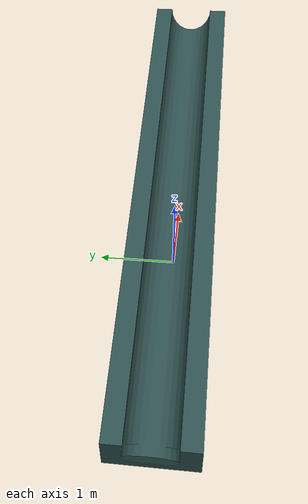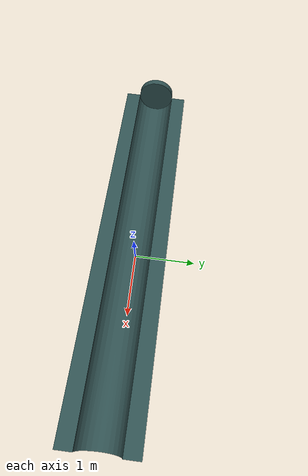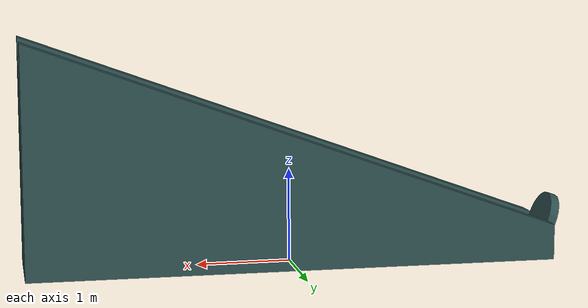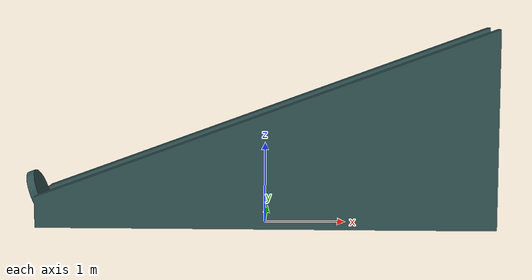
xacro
<?xml version="1.0" ?>
<robot name="basic_launcher" xmlns:xacro="http://www.ros.org/wiki/xacro">

<xacro:include filename="$(find launcher_basic_description)/urdf/materials.xacro" />
<xacro:include filename="$(find launcher_basic_description)/urdf/basic_launcher.gazebo" />

<link name="base_link"/>
<joint name="dummy_joint" type="fixed">
  <origin xyz="0 0 0" rpy="0 0 0" />
    <parent link="base_link" />
    <child link="launcher" />
</joint>

<link name="launcher">
  <inertial>
    <origin xyz="0.7438484910849467 0.0 0.7799578684960197" rpy="0 0 0"/>
    <mass value="56624.52398127676"/>
    <inertia ixx="21939.19016" iyy="136610.920255" izz="124823.861351" ixy="0.0" iyz="-0.0" ixz="-21355.751554"/>
  </inertial>
  <visual>
    <origin xyz="0 0 0" rpy="0 0 0"/>
    <geometry>
      <mesh filename="package://launcher_basic_description/meshes/base_link.stl" scale="0.001 0.001 0.001"/>
    </geometry>
    <material name="darkgrey"/>
  </visual>
  <collision>
    <origin xyz="0 0 0" rpy="0 0 0"/>
    <geometry>
      <mesh filename="package://launcher_basic_description/meshes/base_link.stl" scale="0.001 0.001 0.001"/>
    </geometry>
  </collision>
</link>

</robot>

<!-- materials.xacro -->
<robot name="basic_launcher" xmlns:xacro="http://www.ros.org/wiki/xacro" >

  <material name="grey">
    <color rgba="${211/256} ${211/256} ${211/256} 1.0"/>
  </material>

  <material name="darkgrey">
    <color rgba="${47/255} ${79/255} ${79/255} 1.000"/>
  </material>

  <material name="silver">
    <color rgba="0.700 0.700 0.700 1.000"/>
  </material>

  <material name="white">
    <color rgba="1 1 1 1" />
  </material>

  <material name="orange">
    <color rgba="1 0.3 0.1 1"/>
  </material>

  <material name="blue">
    <color rgba="0.2 0.2 1 1"/>
  </material>

  <material name="red">
    <color rgba="0.8 0 0 1"/>
  </material>

  <material name="green">
    <color rgba="0.0 1 0.0 1"/>
  </material>

  <material name="black">
    <color rgba="0 0 0 1"/>
  </material>

</robot>
